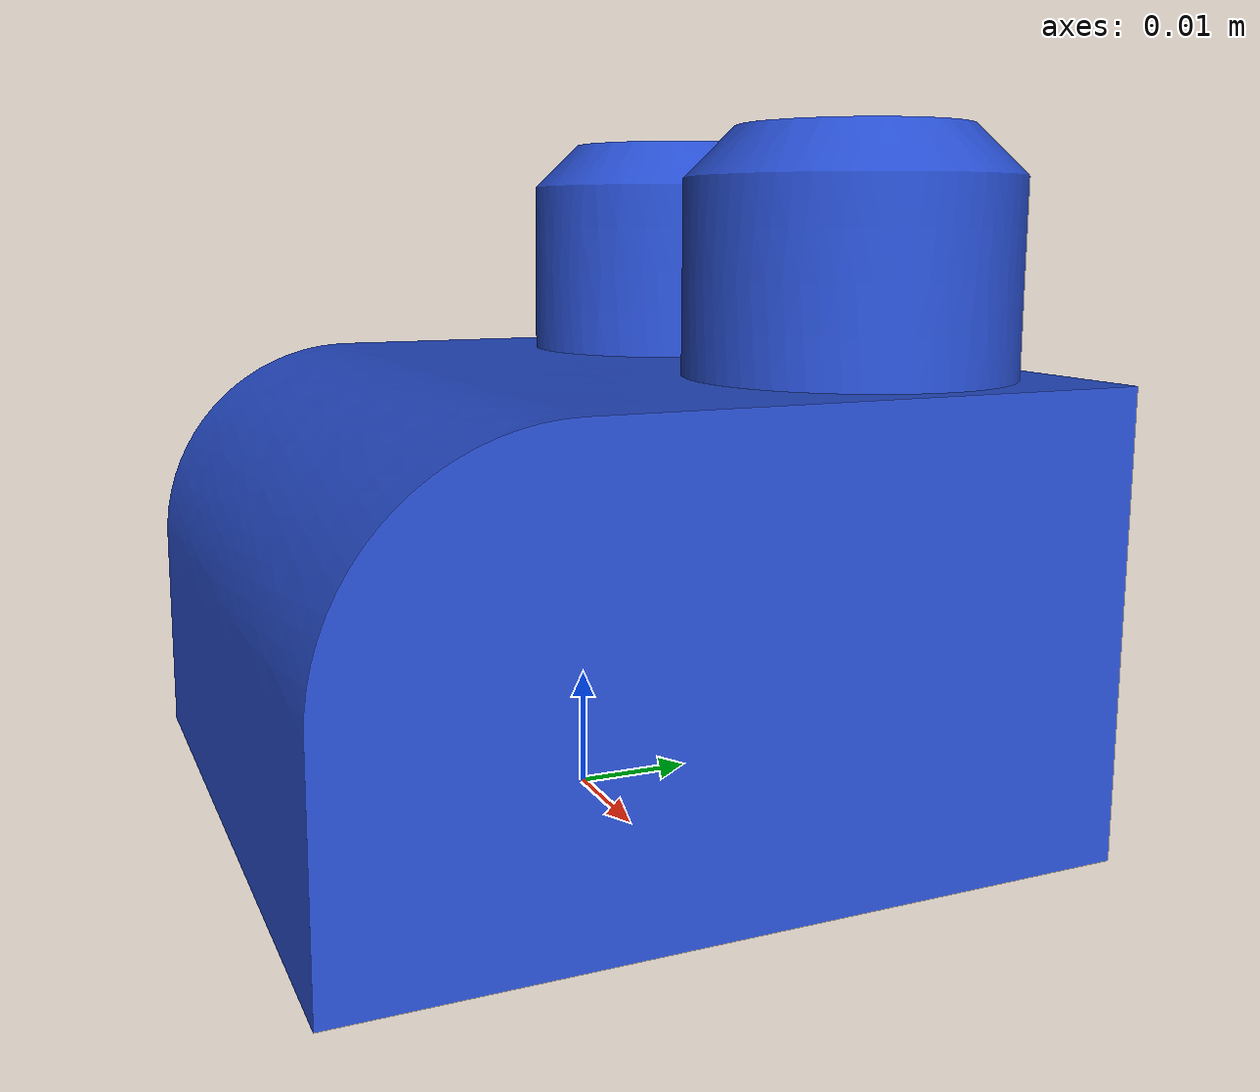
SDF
<?xml version='1.0'?>
<sdf version="1.6">

         <model name="mesh">
             <static>0</static>
             <self_collide>0</self_collide>
             <allow_auto_disable>1</allow_auto_disable>

             <pose>0 0 0 0 -0 0</pose>

             <link name="link">

                 <gravity>1</gravity>
                 <self_collide>0</self_collide>
                 <kinematic>0</kinematic>

                 <pose>0 0 0 0 -0 0</pose>

                 <inertial>
                    <!-- Volume:  2.2336231000e-05 -->
                    <mass>0.001</mass>

                    <!-- Center of mass:  3.7870000000e-05  3.4980500000e-03  2.6431550000e-02 -->
                    <pose>0 0 -0.064e-02 0 0 0</pose>

                    <!-- Inertia matrix -->
                    <inertia>
                        <ixx>0</ixx>
                        <ixy>0</ixy>
                        <ixz>0</ixz>
                        <iyy>0</iyy>
                        <iyz>0</iyz>
                        <izz>0</izz>
                    </inertia>
                </inertial>

                 <collision name="collision">
                     <!--
                         Maximum number of contacts allowed between two entities.
                         This value overrides the max_contacts element defined in physics.
                     -->
                     <max_contacts>20</max_contacts>

                    <pose>0 0 0 0 -0 0</pose>

                     <geometry>
                         <mesh>
                             <uri>model://X2-Y2-Z2-FILLET/mesh/X2-Y2-Z2-FILLET.stl</uri>
                             <!-- Scaling factor applied to the mesh -->
                             <scale>1.0 1.0 1.0</scale>
                         </mesh>
                     </geometry>
                     <!-- http://sdformat.org/spec?ver=1.6&elem=collision#surface_soft_contact -->
                     <surface>
                        <contact>
                            <ode>
                                <max_vel>0.0</max_vel>
                                <min_depth>0.008</min_depth>
                            </ode>
                        </contact>
                    </surface>
                 </collision>

                 <visual name="visual">
                     <cast_shadows>1</cast_shadows>
                     <transparency>0</transparency>

                   <pose>0 0 0 0 -0 0</pose>

                     <material>

                         <script>
                             <uri>file://media/materials/scripts/gazebo.material</uri>
                             <name>Gazebo/Blue</name>
                         </script>
                         <shader type="vertex">
                           <normal_map>__default__</normal_map>
                         </shader>

                         <lighting>1</lighting>
 		                <ambient>0.15 0.75 0.35 1</ambient>
 		                <diffuse>0.1 0.95 0.25 1</diffuse>
 		                <specular>0.01 0.01 0.01 1</specular>
 		                <emissive>0 0 0 1</emissive>
                     </material>

                     <geometry>
                         <mesh>
                             <uri>model://X2-Y2-Z2-FILLET/mesh/X2-Y2-Z2-FILLET.stl</uri>
                             <!-- Scaling factor applied to the mesh -->
                             <scale>1.0 1.0 1.0</scale>
                         </mesh>
                     </geometry>
                 </visual>
             </link>
         </model>
     </sdf>
